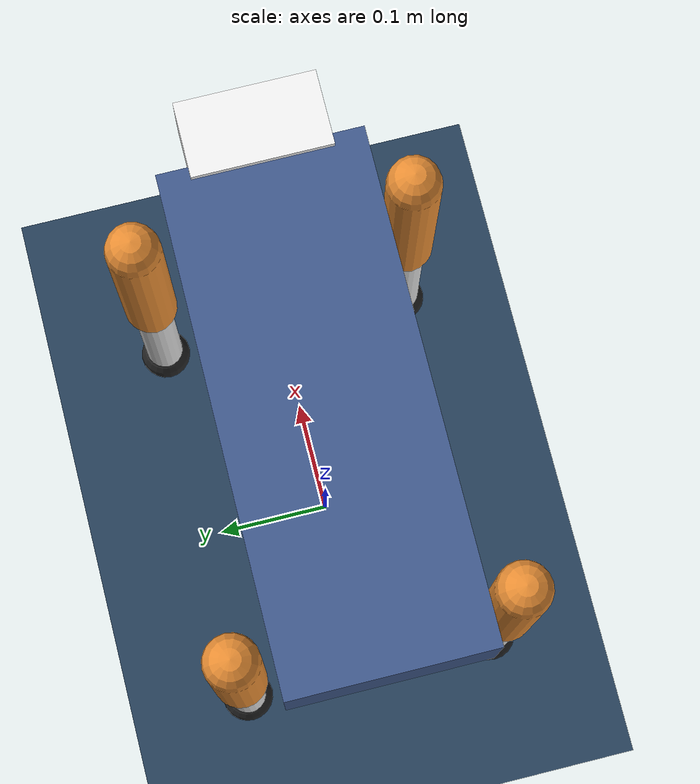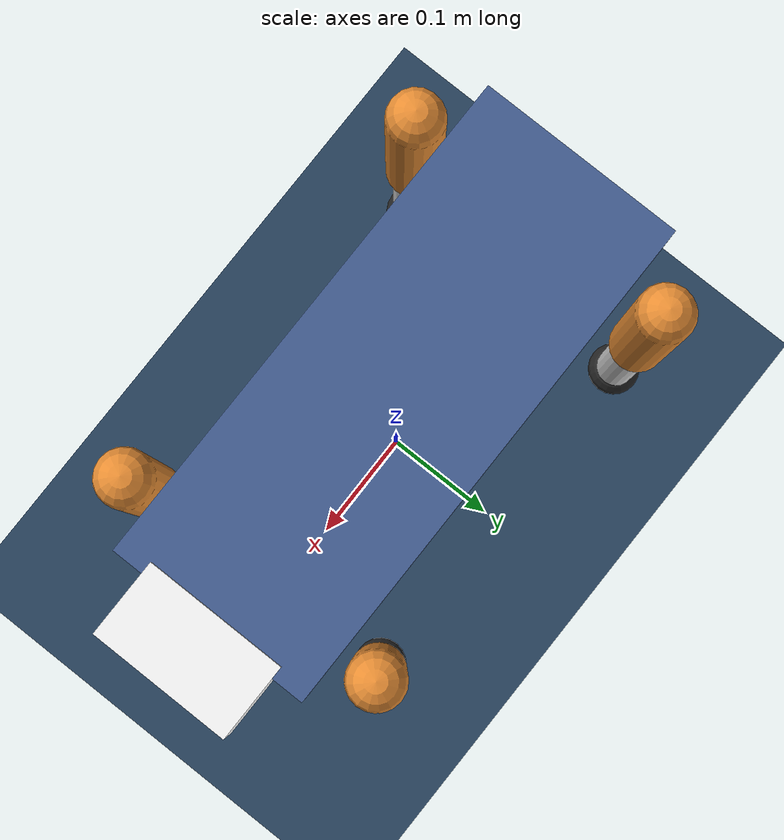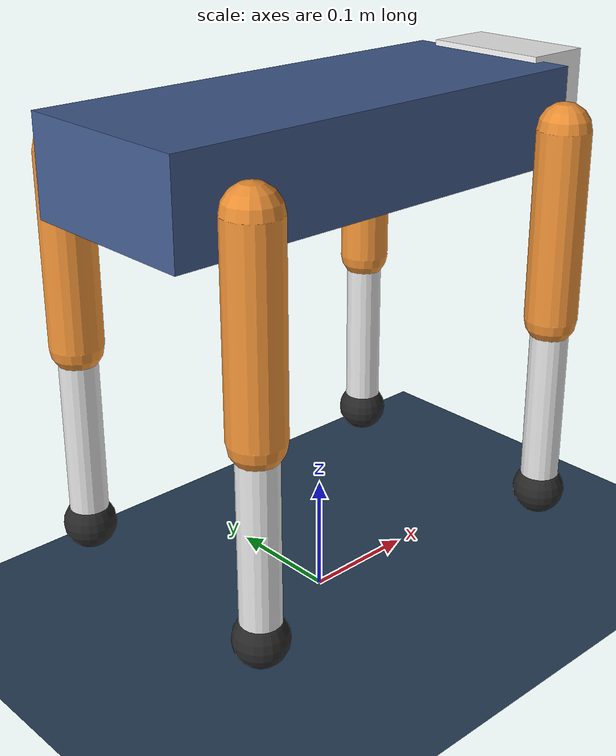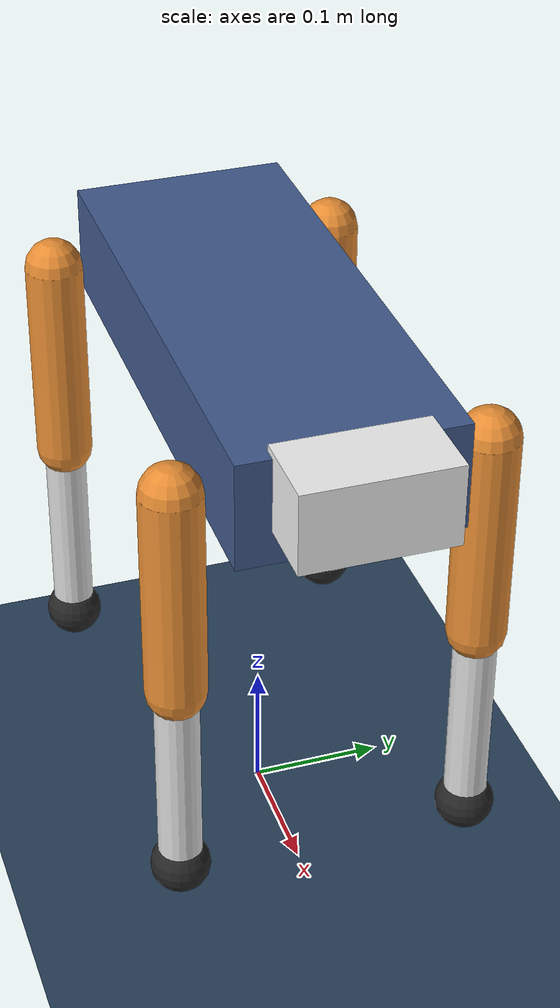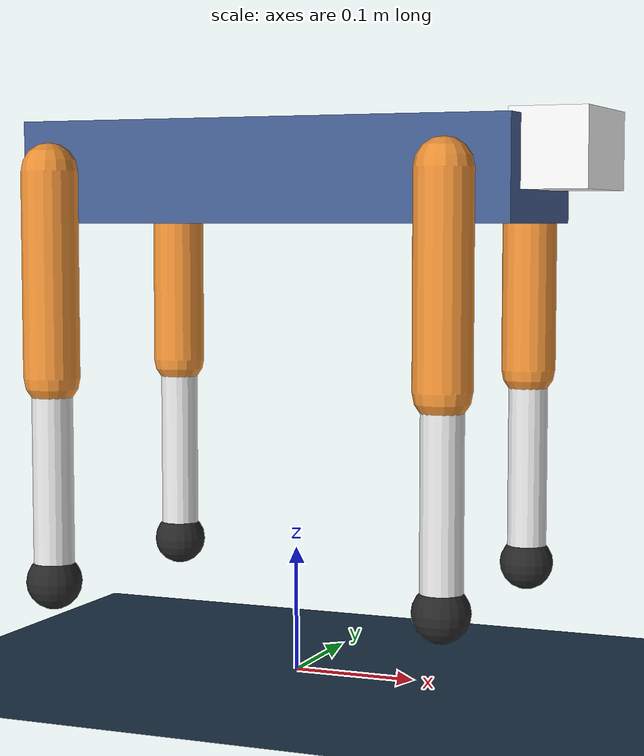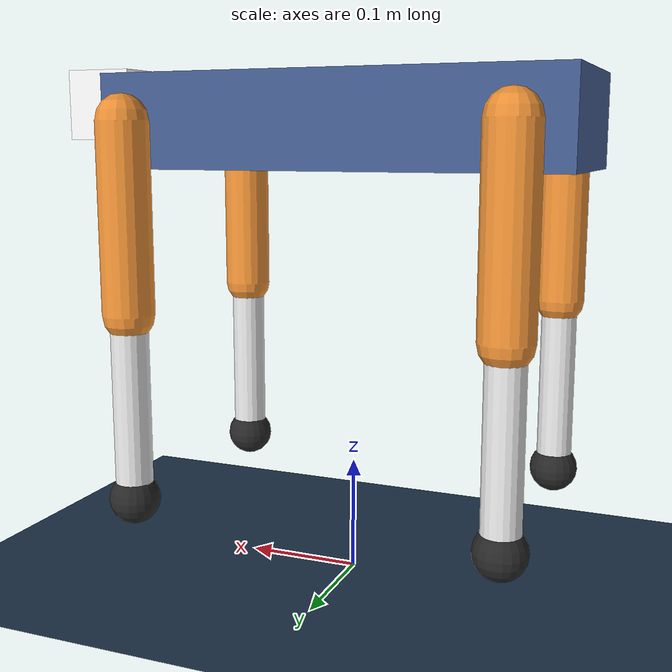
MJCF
<mujoco model="quadruped">
  <!-- MJCF's default angle unit is degrees; we use radians everywhere. -->
  <compiler angle="radian" autolimits="true"/>

  <option timestep="0.002" integrator="implicitfast" cone="elliptic" impratio="100"/>

  <!-- Default camera framing and lighting for MuJoCo's built-in viewer. -->
  <statistic center="0 0 0.2" extent="0.9"/>
  <visual>
    <headlight diffuse="0.6 0.6 0.6" ambient="0.3 0.3 0.3" specular="0 0 0"/>
    <rgba haze="0.15 0.25 0.35 1"/>
    <global azimuth="135" elevation="-20"/>
    <quality shadowsize="4096"/>
  </visual>

  <asset>
    <texture type="skybox" builtin="gradient" rgb1="0.3 0.5 0.7" rgb2="0 0 0" width="512" height="3072"/>
    <texture type="2d" name="grid" builtin="checker" mark="edge" rgb1="0.2 0.3 0.4" rgb2="0.1 0.2 0.3"
             markrgb="0.8 0.8 0.8" width="300" height="300"/>
    <material name="grid" texture="grid" texrepeat="5 5" texuniform="true" reflectance="0.2"/>
  </asset>

  <default>
    <!-- Everything inside the robot uses class "robot" (via childclass below). -->
    <default class="robot">
      <geom contype="1" conaffinity="0" condim="3" friction="1.0 0.005 0.0001"/>

      <joint type="hinge" axis="0 1 0" armature="0.01" damping="0.1"/>

      <position kp="40" kv="1.0" forcerange="-10 10" inheritrange="1"/>

      <default class="hip">
        <joint range="-1.0 1.8"/>
      </default>
      <default class="knee">
        <!-- Knee only bends one way (like a real knee): 0 = straight, negative = bent. -->
        <joint range="-2.6 0"/>
      </default>

      <default class="torso">
        <geom rgba="0.25 0.35 0.55 1"/>
      </default>
      <default class="thigh">
        <geom type="capsule" size="0.022" fromto="0 0 0  0 0 -0.16" mass="0.4" rgba="0.9 0.55 0.2 1"/>
      </default>
      <default class="shin">
        <geom type="capsule" size="0.016" fromto="0 0 0  0 0 -0.16" mass="0.15" rgba="0.85 0.85 0.85 1"/>
      </default>
      <default class="foot">
        <geom type="sphere" size="0.022" pos="0 0 -0.16" mass="0.05" rgba="0.15 0.15 0.15 1"/>
      </default>
    </default>
  </default>

  <worldbody>
    <light name="sun" pos="0 0 3" dir="0 0 -1" directional="true" castshadow="true"/>
    <!-- size "0 0 ..." = infinite plane (planes are always infinite for collisions). -->
    <geom name="floor" type="plane" size="0 0 0.05" material="grid"/>

    <body name="torso" pos="0 0 0.4" childclass="robot">
      <!-- Free joint: the torso isn't attached to anything; gravity and contacts move it. -->
      <freejoint name="root"/>
      <!-- A camera that follows the robot (in the viewer, press ] to switch to it). -->
      <camera name="track" mode="trackcom" pos="0.4 -1.1 0.4" xyaxes="0.94 0.34 0  -0.11 0.30 0.95"/>

      <!-- box size = HALF-extents: 0.40 m long, 0.16 m wide, 0.08 m tall. -->
      <geom name="torso" class="torso" type="box" size="0.2 0.08 0.04" mass="4.0"/>
      <!-- "Head" marks which way is forward (+x). -->
      <geom name="head" class="torso" type="box" pos="0.22 0 0.015" size="0.03 0.055 0.03" mass="0.2"
            rgba="0.95 0.95 0.95 1"/>

      <!-- Legs. Hips sit near the torso corners, just outside its sides (y = +-0.11). -->
      <body name="FL_thigh" pos="0.16 0.11 0">
        <joint name="FL_hip" class="hip"/>
        <geom name="FL_thigh" class="thigh"/>
        <body name="FL_shin" pos="0 0 -0.16">
          <joint name="FL_knee" class="knee"/>
          <geom name="FL_shin" class="shin"/>
          <geom name="FL_foot" class="foot"/>
        </body>
      </body>

      <body name="FR_thigh" pos="0.16 -0.11 0">
        <joint name="FR_hip" class="hip"/>
        <geom name="FR_thigh" class="thigh"/>
        <body name="FR_shin" pos="0 0 -0.16">
          <joint name="FR_knee" class="knee"/>
          <geom name="FR_shin" class="shin"/>
          <geom name="FR_foot" class="foot"/>
        </body>
      </body>

      <body name="RL_thigh" pos="-0.16 0.11 0">
        <joint name="RL_hip" class="hip"/>
        <geom name="RL_thigh" class="thigh"/>
        <body name="RL_shin" pos="0 0 -0.16">
          <joint name="RL_knee" class="knee"/>
          <geom name="RL_shin" class="shin"/>
          <geom name="RL_foot" class="foot"/>
        </body>
      </body>

      <body name="RR_thigh" pos="-0.16 -0.11 0">
        <joint name="RR_hip" class="hip"/>
        <geom name="RR_thigh" class="thigh"/>
        <body name="RR_shin" pos="0 0 -0.16">
          <joint name="RR_knee" class="knee"/>
          <geom name="RR_shin" class="shin"/>
          <geom name="RR_foot" class="foot"/>
        </body>
      </body>
    </body>
  </worldbody>

  <!-- One motor per joint. Order here = order of data.ctrl. -->
  <actuator>
    <position name="FL_hip"  joint="FL_hip"  class="robot"/>
    <position name="FL_knee" joint="FL_knee" class="robot"/>
    <position name="FR_hip"  joint="FR_hip"  class="robot"/>
    <position name="FR_knee" joint="FR_knee" class="robot"/>
    <position name="RL_hip"  joint="RL_hip"  class="robot"/>
    <position name="RL_knee" joint="RL_knee" class="robot"/>
    <position name="RR_hip"  joint="RR_hip"  class="robot"/>
    <position name="RR_knee" joint="RR_knee" class="robot"/>
  </actuator>

  <keyframe>
    <key name="home"
         qpos="0 0 0.4  1 0 0 0
               0.7 -1.4  0.7 -1.4  0.7 -1.4  0.7 -1.4"
         ctrl="0.7 -1.4  0.7 -1.4  0.7 -1.4  0.7 -1.4"/>

    <key name="crouch" ctrl="1.1 -2.2  1.1 -2.2  1.1 -2.2  1.1 -2.2"/>    <!-- torso ~0.16 m -->
    <key name="tall"   ctrl="0.35 -0.7  0.35 -0.7  0.35 -0.7  0.35 -0.7"/> <!-- torso ~0.32 m -->
    <!-- Front legs nearly straight, rear legs folded: sits on its rear thighs, nose up ~32 deg. -->
    <key name="sit"    ctrl="0.25 -0.5  0.25 -0.5  1.5 -2.5  1.5 -2.5"/>
  </keyframe>
</mujoco>
